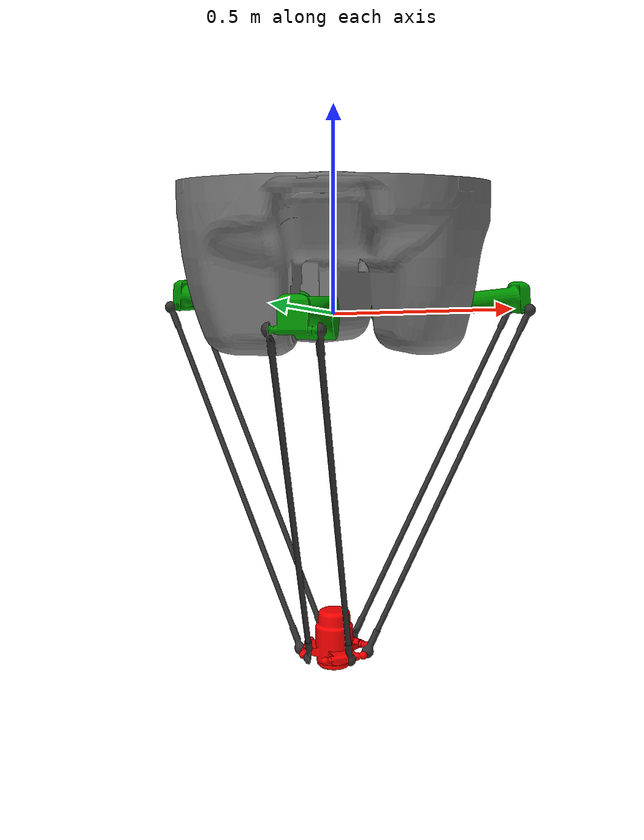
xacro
<?xml version="1.0" ?>
<robot name="motoman_mpp3h" xmlns:xacro="http://ros.org/wiki/xacro">
  <xacro:property name="prefix_def" value=""/> <!-- Required, because "default" cannot evaluate empty string -->
  <xacro:arg name="prefix" default="${prefix_def}"/>
  <xacro:include filename="$(find motoman_mpp3h_support)/urdf/mpp3h_macro.xacro"/>
  <xacro:motoman_mpp3h prefix="$(arg prefix)"/>
</robot>

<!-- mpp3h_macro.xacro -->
<robot xmlns:xacro="http://ros.org/wiki/xacro">

   <xacro:property name="dist_motor_to_center_"  value="0.160" />
   <xacro:property name="upper_arm_len_"         value="0.360" />
   <xacro:property name="lower_arm_len_"         value="0.960" />
   <xacro:property name="dist_armfixt_to_tool_"  value="0.070" />
   <xacro:property name="dist_lower_arm_links_"  value="0.050" />
   <xacro:property name="PI" value="3.1415926535897931"/>

   <xacro:include filename="$(find motoman_mpp3h_support)/urdf/mpp3h_leg_macro.xacro"/>

   <xacro:macro name="motoman_mpp3h" params="prefix">

    <!-- Base Link -->
    <link name="${prefix}base_link">
      <visual>
        <origin xyz="0 0 0" rpy="0 0 0" />
        <geometry>
          <mesh filename="package://motoman_mpp3h_support/meshes/base_link.STL" />
        </geometry>
        <material name="">
          <color rgba="0.5 0.5 0.5 1" />
        </material>
      </visual>
      <collision>
        <origin xyz="0 0 0" rpy="0 0 0" />
        <geometry>
          <mesh filename="package://motoman_mpp3h_support/meshes/base_link.STL" />
        </geometry>
      </collision>
    </link>

    <!-- The three MPP3H arms -->
    <!--  90deg -->
    <xacro:motoman_mpp3h_leg num="s" x="${dist_motor_to_center_}"      y= "0.0" r="1.5708"/>
    <!-- 210deg -->
    <xacro:motoman_mpp3h_leg num="l" x="${dist_motor_to_center_*-0.5}" y="${-dist_motor_to_center_*0.86603}" r="-0.52360" />
    <!-- -30deg -->
    <xacro:motoman_mpp3h_leg num="u" x="${dist_motor_to_center_*-0.5}" y="${-dist_motor_to_center_*-0.86603}" r= "3.66519" />

    <!-- End Effector Link -->
    <link name="${prefix}ee_upper_link">
      <visual>
        <origin xyz="0 0 0" rpy="0 0 0" />
        <geometry>
          <mesh filename="package://motoman_mpp3h_support/meshes/ee_link_upper.STL" />
        </geometry>
        <material name="">
          <color rgba="1 0 0 1" />
        </material>
      </visual>
      <collision>
        <origin xyz="0 0 0" rpy="0 0 0" />
        <geometry>
          <mesh filename="package://motoman_mpp3h_support/meshes/ee_link_upper.STL" />
        </geometry>
      </collision>
    </link>
    <joint name="${prefix}ee_upper_joint" type="floating">
      <origin xyz="0 0 -0.847819" rpy="0 0 0.523599" />
      <parent link="${prefix}base_link" />
      <child link="${prefix}ee_upper_link" />
    </joint>

    <link name="${prefix}ee_lower_link">
      <visual>
        <origin xyz="0 0 0" rpy="0 0 0" />
        <geometry>
          <mesh filename="package://motoman_mpp3h_support/meshes/ee_link_lower.STL" />
        </geometry>
        <material name="">
          <color rgba="1 0 0 1" />
        </material>
      </visual>
      <collision>
        <origin xyz="0 0 0" rpy="0 0 0" />
        <geometry>
          <mesh filename="package://motoman_mpp3h_support/meshes/ee_link_lower.STL" />
        </geometry>
      </collision>
    </link>
    <joint name="${prefix}joint_t" type="revolute">
      <axis xyz="0 0 1"/>
      <limit effort="1000.0" lower="${-PI}" upper="${PI}" velocity="24.0"/>
      <origin xyz="0 0 0" rpy="0 0 0" />
      <parent link="${prefix}ee_upper_link" />
      <child link="${prefix}ee_lower_link" />
    </joint>

    <!-- Tool0 for compliance with ROS-I protocols -->
    <link name="${prefix}tool0"/>
    <joint name="${prefix}ee_lower_to_tool0" type="fixed">
      <parent link="${prefix}ee_lower_link"/>
      <child link="${prefix}tool0"/>
    </joint>

    <!-- Joints r and b for compliance with motoman_driver -->
    <link name="${prefix}link_r_fake"/>
    <joint name="${prefix}joint_r" type="revolute">
      <axis xyz="0 0 1"/>
      <limit effort="0" lower="0" upper="0" velocity="0"/>
      <origin xyz="0 0 0" rpy="0 0 0" />
      <parent link="${prefix}base_link"/>
      <child link="${prefix}link_r_fake"/>
    </joint>
    <link name="${prefix}link_b_fake"/>
    <joint name="${prefix}joint_b" type="revolute">
      <axis xyz="0 0 1"/>
      <limit effort="0" lower="0" upper="0" velocity="0"/>
      <origin xyz="0 0 0" rpy="0 0 0" />
      <parent link="${prefix}base_link"/>
      <child link="${prefix}link_b_fake"/>
    </joint>

  </xacro:macro>
</robot>

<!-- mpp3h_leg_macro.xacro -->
<robot xmlns:xacro="http://ros.org/wiki/xacro">

    <xacro:macro name="motoman_mpp3h_leg" params="num x y r">

    <link name="${prefix}link_${num}">
      <visual>
        <origin xyz="0 0 0" rpy="0 0 0" />
        <geometry>
          <mesh filename="package://motoman_mpp3h_support/meshes/upper_arm.STL" />
        </geometry>
        <material name="">
          <color rgba="0 0.6 0 1" />
        </material>
        </visual>
      <collision>
        <origin xyz="0 0 0" rpy="0 0 0" />
        <geometry>
          <mesh filename="package://motoman_mpp3h_support/meshes/upper_arm.STL" />
        </geometry>
      </collision>
    </link>
    <joint name="${prefix}joint_${num}" type="revolute">
      <axis xyz="0 0 1"/>
      <limit effort="1000.0" lower="-0.75" upper="0.7" velocity="15.0"/>
      <origin xyz="${x} ${y} 0.0" rpy="${r} ${-PI/2} ${PI}" />
      <parent link="${prefix}base_link" />
      <child link="${prefix}link_${num}" />
    </joint>

    <link name="${prefix}link_${num}_lower_left">
      <visual>
        <origin xyz="0 0 0" rpy="0 0 0" />
        <geometry>
          <mesh filename="package://motoman_mpp3h_support/meshes/lower_arm_a.STL" />
        </geometry>
        <material name="">
          <color rgba="0.2 0.2 0.2 1" />
        </material>
      </visual>
      <collision>
        <origin xyz="0 0 0" rpy="0 0 0" />
        <geometry>
          <mesh filename="package://motoman_mpp3h_support/meshes/lower_arm_a.STL" />
        </geometry>
      </collision>
    </link>
    <joint name="${prefix}joint_${num}_lower_left" type="floating">
      <origin xyz="0 ${upper_arm_len_} ${-dist_lower_arm_links_}"
              rpy="${-PI} 0 -1.082136" />
      <parent link="${prefix}link_${num}" />
      <child link="${prefix}link_${num}_lower_left" />
    </joint>

    <link name="${prefix}link_${num}_lower_right">
      <visual>
        <origin xyz="0 0 0" rpy="0 0 0" />
        <geometry>
          <mesh filename="package://motoman_mpp3h_support/meshes/lower_arm_b.STL" />
        </geometry>
        <material name="">
          <color rgba="0.2 0.2 0.2 1" />
        </material>
      </visual>
      <collision>
        <origin xyz="0 0 0" rpy="0 0 0" />
        <geometry>
          <mesh filename="package://motoman_mpp3h_support/meshes/lower_arm_b.STL" />
        </geometry>
      </collision>
    </link>
    <joint name="${prefix}joint_${num}_lower_right" type="floating">
      <origin xyz="0 ${upper_arm_len_} ${dist_lower_arm_links_}"
              rpy="${-PI} 0 -1.082136" />
      <parent link="${prefix}link_${num}" />
      <child link="${prefix}link_${num}_lower_right" />
    </joint>

    </xacro:macro>
</robot>
